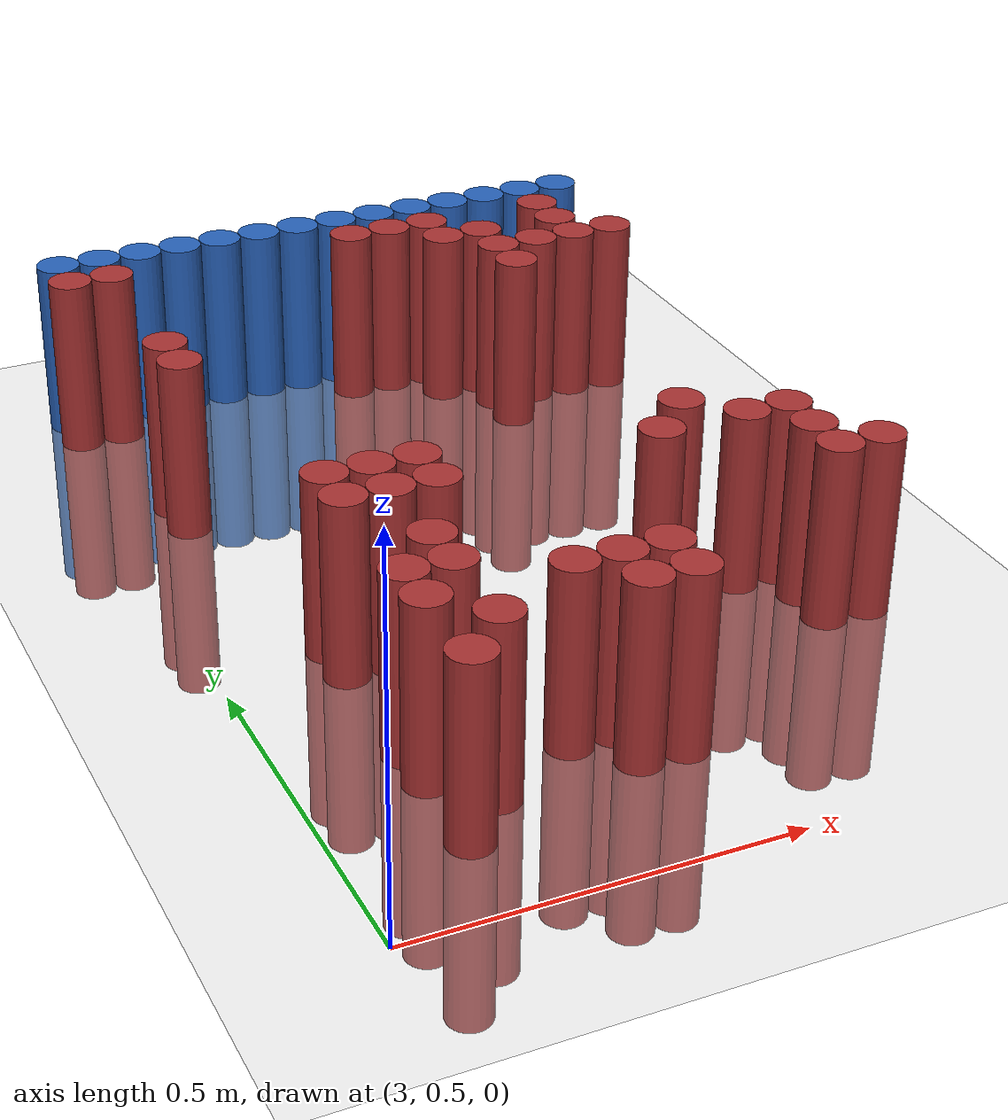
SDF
<sdf version="1.6">
 <world name="default">
  <model name="ground_plane">
   <static>1</static>
   <link name="link">
    <collision name="collision">
     <geometry><plane><normal>0 0 1</normal><size>100 100</size></plane></geometry>
     <surface><friction><ode><mu>100</mu><mu2>50</mu2></ode></friction></surface>
    </collision>
    <visual name="visual">
     <cast_shadows>0</cast_shadows>
     <geometry><plane><normal>0 0 1</normal><size>100 100</size></plane></geometry>
     <material>
      <script><uri>file://media/materials/scripts/gazebo.material</uri><name>Gazebo/Grey</name></script>
     </material>
    </visual>
   </link>
  </model>
  <model name="unit_cylinder_111">
   <static>1</static>
   <pose>3.030000 1.770000 0.000000 0.000000 0.000000 0.000000</pose>
   <link name="link">
    <inertial>
     <mass>1</mass>
     <inertia><ixx>0.145833</ixx><ixy>0</ixy><ixz>0</ixz><iyy>0.145833</iyy><iyz>0</iyz><izz>0.125</izz></inertia>
    </inertial>
    <collision name="collision">
     <geometry><cylinder><radius>0.030000</radius><length>0.5</length></cylinder></geometry>
    </collision>
    <visual name="visual">
     <geometry><cylinder><radius>0.030000</radius><length>0.5</length></cylinder></geometry>
     <material>
      <ambient>0.152000 0.379000 0.720000 1</ambient>
      <diffuse>0.152000 0.379000 0.720000 1</diffuse>
     </material>
     <material>
      <script><name>Gazebo/Grey</name><uri>file://media/materials/scripts/gazebo.material</uri></script>
     </material>
    </visual>
   </link>
  </model>
  <model name="unit_cylinder_112">
   <static>1</static>
   <pose>3.090000 1.770000 0.000000 0.000000 0.000000 0.000000</pose>
   <link name="link">
    <inertial>
     <mass>1</mass>
     <inertia><ixx>0.145833</ixx><ixy>0</ixy><ixz>0</ixz><iyy>0.145833</iyy><iyz>0</iyz><izz>0.125</izz></inertia>
    </inertial>
    <collision name="collision">
     <geometry><cylinder><radius>0.030000</radius><length>0.5</length></cylinder></geometry>
    </collision>
    <visual name="visual">
     <geometry><cylinder><radius>0.030000</radius><length>0.5</length></cylinder></geometry>
     <material>
      <ambient>0.152000 0.379000 0.720000 1</ambient>
      <diffuse>0.152000 0.379000 0.720000 1</diffuse>
     </material>
     <material>
      <script><name>Gazebo/Grey</name><uri>file://media/materials/scripts/gazebo.material</uri></script>
     </material>
    </visual>
   </link>
  </model>
  <model name="unit_cylinder_113">
   <static>1</static>
   <pose>3.150000 1.770000 0.000000 0.000000 0.000000 0.000000</pose>
   <link name="link">
    <inertial>
     <mass>1</mass>
     <inertia><ixx>0.145833</ixx><ixy>0</ixy><ixz>0</ixz><iyy>0.145833</iyy><iyz>0</iyz><izz>0.125</izz></inertia>
    </inertial>
    <collision name="collision">
     <geometry><cylinder><radius>0.030000</radius><length>0.5</length></cylinder></geometry>
    </collision>
    <visual name="visual">
     <geometry><cylinder><radius>0.030000</radius><length>0.5</length></cylinder></geometry>
     <material>
      <ambient>0.152000 0.379000 0.720000 1</ambient>
      <diffuse>0.152000 0.379000 0.720000 1</diffuse>
     </material>
     <material>
      <script><name>Gazebo/Grey</name><uri>file://media/materials/scripts/gazebo.material</uri></script>
     </material>
    </visual>
   </link>
  </model>
  <model name="unit_cylinder_114">
   <static>1</static>
   <pose>3.210000 1.770000 0.000000 0.000000 0.000000 0.000000</pose>
   <link name="link">
    <inertial>
     <mass>1</mass>
     <inertia><ixx>0.145833</ixx><ixy>0</ixy><ixz>0</ixz><iyy>0.145833</iyy><iyz>0</iyz><izz>0.125</izz></inertia>
    </inertial>
    <collision name="collision">
     <geometry><cylinder><radius>0.030000</radius><length>0.5</length></cylinder></geometry>
    </collision>
    <visual name="visual">
     <geometry><cylinder><radius>0.030000</radius><length>0.5</length></cylinder></geometry>
     <material>
      <ambient>0.152000 0.379000 0.720000 1</ambient>
      <diffuse>0.152000 0.379000 0.720000 1</diffuse>
     </material>
     <material>
      <script><name>Gazebo/Grey</name><uri>file://media/materials/scripts/gazebo.material</uri></script>
     </material>
    </visual>
   </link>
  </model>
  <model name="unit_cylinder_115">
   <static>1</static>
   <pose>3.270000 1.770000 0.000000 0.000000 0.000000 0.000000</pose>
   <link name="link">
    <inertial>
     <mass>1</mass>
     <inertia><ixx>0.145833</ixx><ixy>0</ixy><ixz>0</ixz><iyy>0.145833</iyy><iyz>0</iyz><izz>0.125</izz></inertia>
    </inertial>
    <collision name="collision">
     <geometry><cylinder><radius>0.030000</radius><length>0.5</length></cylinder></geometry>
    </collision>
    <visual name="visual">
     <geometry><cylinder><radius>0.030000</radius><length>0.5</length></cylinder></geometry>
     <material>
      <ambient>0.152000 0.379000 0.720000 1</ambient>
      <diffuse>0.152000 0.379000 0.720000 1</diffuse>
     </material>
     <material>
      <script><name>Gazebo/Grey</name><uri>file://media/materials/scripts/gazebo.material</uri></script>
     </material>
    </visual>
   </link>
  </model>
  <model name="unit_cylinder_116">
   <static>1</static>
   <pose>3.330000 1.770000 0.000000 0.000000 0.000000 0.000000</pose>
   <link name="link">
    <inertial>
     <mass>1</mass>
     <inertia><ixx>0.145833</ixx><ixy>0</ixy><ixz>0</ixz><iyy>0.145833</iyy><iyz>0</iyz><izz>0.125</izz></inertia>
    </inertial>
    <collision name="collision">
     <geometry><cylinder><radius>0.030000</radius><length>0.5</length></cylinder></geometry>
    </collision>
    <visual name="visual">
     <geometry><cylinder><radius>0.030000</radius><length>0.5</length></cylinder></geometry>
     <material>
      <ambient>0.152000 0.379000 0.720000 1</ambient>
      <diffuse>0.152000 0.379000 0.720000 1</diffuse>
     </material>
     <material>
      <script><name>Gazebo/Grey</name><uri>file://media/materials/scripts/gazebo.material</uri></script>
     </material>
    </visual>
   </link>
  </model>
  <model name="unit_cylinder_117">
   <static>1</static>
   <pose>3.390000 1.770000 0.000000 0.000000 0.000000 0.000000</pose>
   <link name="link">
    <inertial>
     <mass>1</mass>
     <inertia><ixx>0.145833</ixx><ixy>0</ixy><ixz>0</ixz><iyy>0.145833</iyy><iyz>0</iyz><izz>0.125</izz></inertia>
    </inertial>
    <collision name="collision">
     <geometry><cylinder><radius>0.030000</radius><length>0.5</length></cylinder></geometry>
    </collision>
    <visual name="visual">
     <geometry><cylinder><radius>0.030000</radius><length>0.5</length></cylinder></geometry>
     <material>
      <ambient>0.152000 0.379000 0.720000 1</ambient>
      <diffuse>0.152000 0.379000 0.720000 1</diffuse>
     </material>
     <material>
      <script><name>Gazebo/Grey</name><uri>file://media/materials/scripts/gazebo.material</uri></script>
     </material>
    </visual>
   </link>
  </model>
  <model name="unit_cylinder_118">
   <static>1</static>
   <pose>3.450000 1.770000 0.000000 0.000000 0.000000 0.000000</pose>
   <link name="link">
    <inertial>
     <mass>1</mass>
     <inertia><ixx>0.145833</ixx><ixy>0</ixy><ixz>0</ixz><iyy>0.145833</iyy><iyz>0</iyz><izz>0.125</izz></inertia>
    </inertial>
    <collision name="collision">
     <geometry><cylinder><radius>0.030000</radius><length>0.5</length></cylinder></geometry>
    </collision>
    <visual name="visual">
     <geometry><cylinder><radius>0.030000</radius><length>0.5</length></cylinder></geometry>
     <material>
      <ambient>0.152000 0.379000 0.720000 1</ambient>
      <diffuse>0.152000 0.379000 0.720000 1</diffuse>
     </material>
     <material>
      <script><name>Gazebo/Grey</name><uri>file://media/materials/scripts/gazebo.material</uri></script>
     </material>
    </visual>
   </link>
  </model>
  <model name="unit_cylinder_119">
   <static>1</static>
   <pose>3.510000 1.770000 0.000000 0.000000 0.000000 0.000000</pose>
   <link name="link">
    <inertial>
     <mass>1</mass>
     <inertia><ixx>0.145833</ixx><ixy>0</ixy><ixz>0</ixz><iyy>0.145833</iyy><iyz>0</iyz><izz>0.125</izz></inertia>
    </inertial>
    <collision name="collision">
     <geometry><cylinder><radius>0.030000</radius><length>0.5</length></cylinder></geometry>
    </collision>
    <visual name="visual">
     <geometry><cylinder><radius>0.030000</radius><length>0.5</length></cylinder></geometry>
     <material>
      <ambient>0.152000 0.379000 0.720000 1</ambient>
      <diffuse>0.152000 0.379000 0.720000 1</diffuse>
     </material>
     <material>
      <script><name>Gazebo/Grey</name><uri>file://media/materials/scripts/gazebo.material</uri></script>
     </material>
    </visual>
   </link>
  </model>
  <model name="unit_cylinder_120">
   <static>1</static>
   <pose>3.570000 1.770000 0.000000 0.000000 0.000000 0.000000</pose>
   <link name="link">
    <inertial>
     <mass>1</mass>
     <inertia><ixx>0.145833</ixx><ixy>0</ixy><ixz>0</ixz><iyy>0.145833</iyy><iyz>0</iyz><izz>0.125</izz></inertia>
    </inertial>
    <collision name="collision">
     <geometry><cylinder><radius>0.030000</radius><length>0.5</length></cylinder></geometry>
    </collision>
    <visual name="visual">
     <geometry><cylinder><radius>0.030000</radius><length>0.5</length></cylinder></geometry>
     <material>
      <ambient>0.152000 0.379000 0.720000 1</ambient>
      <diffuse>0.152000 0.379000 0.720000 1</diffuse>
     </material>
     <material>
      <script><name>Gazebo/Grey</name><uri>file://media/materials/scripts/gazebo.material</uri></script>
     </material>
    </visual>
   </link>
  </model>
  <model name="unit_cylinder_121">
   <static>1</static>
   <pose>3.630000 1.770000 0.000000 0.000000 0.000000 0.000000</pose>
   <link name="link">
    <inertial>
     <mass>1</mass>
     <inertia><ixx>0.145833</ixx><ixy>0</ixy><ixz>0</ixz><iyy>0.145833</iyy><iyz>0</iyz><izz>0.125</izz></inertia>
    </inertial>
    <collision name="collision">
     <geometry><cylinder><radius>0.030000</radius><length>0.5</length></cylinder></geometry>
    </collision>
    <visual name="visual">
     <geometry><cylinder><radius>0.030000</radius><length>0.5</length></cylinder></geometry>
     <material>
      <ambient>0.152000 0.379000 0.720000 1</ambient>
      <diffuse>0.152000 0.379000 0.720000 1</diffuse>
     </material>
     <material>
      <script><name>Gazebo/Grey</name><uri>file://media/materials/scripts/gazebo.material</uri></script>
     </material>
    </visual>
   </link>
  </model>
  <model name="unit_cylinder_122">
   <static>1</static>
   <pose>3.690000 1.770000 0.000000 0.000000 0.000000 0.000000</pose>
   <link name="link">
    <inertial>
     <mass>1</mass>
     <inertia><ixx>0.145833</ixx><ixy>0</ixy><ixz>0</ixz><iyy>0.145833</iyy><iyz>0</iyz><izz>0.125</izz></inertia>
    </inertial>
    <collision name="collision">
     <geometry><cylinder><radius>0.030000</radius><length>0.5</length></cylinder></geometry>
    </collision>
    <visual name="visual">
     <geometry><cylinder><radius>0.030000</radius><length>0.5</length></cylinder></geometry>
     <material>
      <ambient>0.152000 0.379000 0.720000 1</ambient>
      <diffuse>0.152000 0.379000 0.720000 1</diffuse>
     </material>
     <material>
      <script><name>Gazebo/Grey</name><uri>file://media/materials/scripts/gazebo.material</uri></script>
     </material>
    </visual>
   </link>
  </model>
  <model name="unit_cylinder_123">
   <static>1</static>
   <pose>3.750000 1.770000 0.000000 0.000000 0.000000 0.000000</pose>
   <link name="link">
    <inertial>
     <mass>1</mass>
     <inertia><ixx>0.145833</ixx><ixy>0</ixy><ixz>0</ixz><iyy>0.145833</iyy><iyz>0</iyz><izz>0.125</izz></inertia>
    </inertial>
    <collision name="collision">
     <geometry><cylinder><radius>0.030000</radius><length>0.5</length></cylinder></geometry>
    </collision>
    <visual name="visual">
     <geometry><cylinder><radius>0.030000</radius><length>0.5</length></cylinder></geometry>
     <material>
      <ambient>0.152000 0.379000 0.720000 1</ambient>
      <diffuse>0.152000 0.379000 0.720000 1</diffuse>
     </material>
     <material>
      <script><name>Gazebo/Grey</name><uri>file://media/materials/scripts/gazebo.material</uri></script>
     </material>
    </visual>
   </link>
  </model>
  <model name="unit_cylinder_124">
   <static>1</static>
   <pose>3.810000 1.770000 0.000000 0.000000 0.000000 0.000000</pose>
   <link name="link">
    <inertial>
     <mass>1</mass>
     <inertia><ixx>0.145833</ixx><ixy>0</ixy><ixz>0</ixz><iyy>0.145833</iyy><iyz>0</iyz><izz>0.125</izz></inertia>
    </inertial>
    <collision name="collision">
     <geometry><cylinder><radius>0.030000</radius><length>0.5</length></cylinder></geometry>
    </collision>
    <visual name="visual">
     <geometry><cylinder><radius>0.030000</radius><length>0.5</length></cylinder></geometry>
     <material>
      <ambient>0.152000 0.379000 0.720000 1</ambient>
      <diffuse>0.152000 0.379000 0.720000 1</diffuse>
     </material>
     <material>
      <script><name>Gazebo/Grey</name><uri>file://media/materials/scripts/gazebo.material</uri></script>
     </material>
    </visual>
   </link>
  </model>
  <model name="unit_cylinder_130">
   <static>1</static>
   <pose>3.030000 1.710000 0.000000 0.000000 0.000000 0.000000</pose>
   <link name="link">
    <inertial>
     <mass>1</mass>
     <inertia><ixx>0.145833</ixx><ixy>0</ixy><ixz>0</ixz><iyy>0.145833</iyy><iyz>0</iyz><izz>0.125</izz></inertia>
    </inertial>
    <collision name="collision">
     <geometry><cylinder><radius>0.030000</radius><length>0.5</length></cylinder></geometry>
    </collision>
    <visual name="visual">
     <geometry><cylinder><radius>0.030000</radius><length>0.5</length></cylinder></geometry>
     <material>
      <ambient>0.648000 0.192000 0.192000 1</ambient>
      <diffuse>0.648000 0.192000 0.192000 1</diffuse>
     </material>
     <material>
      <script><name>Gazebo/Grey</name><uri>file://media/materials/scripts/gazebo.material</uri></script>
     </material>
    </visual>
   </link>
  </model>
  <model name="unit_cylinder_131">
   <static>1</static>
   <pose>3.090000 1.710000 0.000000 0.000000 0.000000 0.000000</pose>
   <link name="link">
    <inertial>
     <mass>1</mass>
     <inertia><ixx>0.145833</ixx><ixy>0</ixy><ixz>0</ixz><iyy>0.145833</iyy><iyz>0</iyz><izz>0.125</izz></inertia>
    </inertial>
    <collision name="collision">
     <geometry><cylinder><radius>0.030000</radius><length>0.5</length></cylinder></geometry>
    </collision>
    <visual name="visual">
     <geometry><cylinder><radius>0.030000</radius><length>0.5</length></cylinder></geometry>
     <material>
      <ambient>0.648000 0.192000 0.192000 1</ambient>
      <diffuse>0.648000 0.192000 0.192000 1</diffuse>
     </material>
     <material>
      <script><name>Gazebo/Grey</name><uri>file://media/materials/scripts/gazebo.material</uri></script>
     </material>
    </visual>
   </link>
  </model>
  <model name="unit_cylinder_132">
   <static>1</static>
   <pose>3.450000 1.710000 0.000000 0.000000 0.000000 0.000000</pose>
   <link name="link">
    <inertial>
     <mass>1</mass>
     <inertia><ixx>0.145833</ixx><ixy>0</ixy><ixz>0</ixz><iyy>0.145833</iyy><iyz>0</iyz><izz>0.125</izz></inertia>
    </inertial>
    <collision name="collision">
     <geometry><cylinder><radius>0.030000</radius><length>0.5</length></cylinder></geometry>
    </collision>
    <visual name="visual">
     <geometry><cylinder><radius>0.030000</radius><length>0.5</length></cylinder></geometry>
     <material>
      <ambient>0.648000 0.192000 0.192000 1</ambient>
      <diffuse>0.648000 0.192000 0.192000 1</diffuse>
     </material>
     <material>
      <script><name>Gazebo/Grey</name><uri>file://media/materials/scripts/gazebo.material</uri></script>
     </material>
    </visual>
   </link>
  </model>
  <model name="unit_cylinder_133">
   <static>1</static>
   <pose>3.510000 1.710000 0.000000 0.000000 0.000000 0.000000</pose>
   <link name="link">
    <inertial>
     <mass>1</mass>
     <inertia><ixx>0.145833</ixx><ixy>0</ixy><ixz>0</ixz><iyy>0.145833</iyy><iyz>0</iyz><izz>0.125</izz></inertia>
    </inertial>
    <collision name="collision">
     <geometry><cylinder><radius>0.030000</radius><length>0.5</length></cylinder></geometry>
    </collision>
    <visual name="visual">
     <geometry><cylinder><radius>0.030000</radius><length>0.5</length></cylinder></geometry>
     <material>
      <ambient>0.648000 0.192000 0.192000 1</ambient>
      <diffuse>0.648000 0.192000 0.192000 1</diffuse>
     </material>
     <material>
      <script><name>Gazebo/Grey</name><uri>file://media/materials/scripts/gazebo.material</uri></script>
     </material>
    </visual>
   </link>
  </model>
  <model name="unit_cylinder_134">
   <static>1</static>
   <pose>3.570000 1.710000 0.000000 0.000000 0.000000 0.000000</pose>
   <link name="link">
    <inertial>
     <mass>1</mass>
     <inertia><ixx>0.145833</ixx><ixy>0</ixy><ixz>0</ixz><iyy>0.145833</iyy><iyz>0</iyz><izz>0.125</izz></inertia>
    </inertial>
    <collision name="collision">
     <geometry><cylinder><radius>0.030000</radius><length>0.5</length></cylinder></geometry>
    </collision>
    <visual name="visual">
     <geometry><cylinder><radius>0.030000</radius><length>0.5</length></cylinder></geometry>
     <material>
      <ambient>0.648000 0.192000 0.192000 1</ambient>
      <diffuse>0.648000 0.192000 0.192000 1</diffuse>
     </material>
     <material>
      <script><name>Gazebo/Grey</name><uri>file://media/materials/scripts/gazebo.material</uri></script>
     </material>
    </visual>
   </link>
  </model>
  <model name="unit_cylinder_135">
   <static>1</static>
   <pose>3.750000 1.710000 0.000000 0.000000 0.000000 0.000000</pose>
   <link name="link">
    <inertial>
     <mass>1</mass>
     <inertia><ixx>0.145833</ixx><ixy>0</ixy><ixz>0</ixz><iyy>0.145833</iyy><iyz>0</iyz><izz>0.125</izz></inertia>
    </inertial>
    <collision name="collision">
     <geometry><cylinder><radius>0.030000</radius><length>0.5</length></cylinder></geometry>
    </collision>
    <visual name="visual">
     <geometry><cylinder><radius>0.030000</radius><length>0.5</length></cylinder></geometry>
     <material>
      <ambient>0.648000 0.192000 0.192000 1</ambient>
      <diffuse>0.648000 0.192000 0.192000 1</diffuse>
     </material>
     <material>
      <script><name>Gazebo/Grey</name><uri>file://media/materials/scripts/gazebo.material</uri></script>
     </material>
    </visual>
   </link>
  </model>
  <model name="unit_cylinder_146">
   <static>1</static>
   <pose>3.570000 1.650000 0.000000 0.000000 0.000000 0.000000</pose>
   <link name="link">
    <inertial>
     <mass>1</mass>
     <inertia><ixx>0.145833</ixx><ixy>0</ixy><ixz>0</ixz><iyy>0.145833</iyy><iyz>0</iyz><izz>0.125</izz></inertia>
    </inertial>
    <collision name="collision">
     <geometry><cylinder><radius>0.030000</radius><length>0.5</length></cylinder></geometry>
    </collision>
    <visual name="visual">
     <geometry><cylinder><radius>0.030000</radius><length>0.5</length></cylinder></geometry>
     <material>
      <ambient>0.648000 0.192000 0.192000 1</ambient>
      <diffuse>0.648000 0.192000 0.192000 1</diffuse>
     </material>
     <material>
      <script><name>Gazebo/Grey</name><uri>file://media/materials/scripts/gazebo.material</uri></script>
     </material>
    </visual>
   </link>
  </model>
  <model name="unit_cylinder_147">
   <static>1</static>
   <pose>3.630000 1.650000 0.000000 0.000000 0.000000 0.000000</pose>
   <link name="link">
    <inertial>
     <mass>1</mass>
     <inertia><ixx>0.145833</ixx><ixy>0</ixy><ixz>0</ixz><iyy>0.145833</iyy><iyz>0</iyz><izz>0.125</izz></inertia>
    </inertial>
    <collision name="collision">
     <geometry><cylinder><radius>0.030000</radius><length>0.5</length></cylinder></geometry>
    </collision>
    <visual name="visual">
     <geometry><cylinder><radius>0.030000</radius><length>0.5</length></cylinder></geometry>
     <material>
      <ambient>0.648000 0.192000 0.192000 1</ambient>
      <diffuse>0.648000 0.192000 0.192000 1</diffuse>
     </material>
     <material>
      <script><name>Gazebo/Grey</name><uri>file://media/materials/scripts/gazebo.material</uri></script>
     </material>
    </visual>
   </link>
  </model>
  <model name="unit_cylinder_148">
   <static>1</static>
   <pose>3.750000 1.650000 0.000000 0.000000 0.000000 0.000000</pose>
   <link name="link">
    <inertial>
     <mass>1</mass>
     <inertia><ixx>0.145833</ixx><ixy>0</ixy><ixz>0</ixz><iyy>0.145833</iyy><iyz>0</iyz><izz>0.125</izz></inertia>
    </inertial>
    <collision name="collision">
     <geometry><cylinder><radius>0.030000</radius><length>0.5</length></cylinder></geometry>
    </collision>
    <visual name="visual">
     <geometry><cylinder><radius>0.030000</radius><length>0.5</length></cylinder></geometry>
     <material>
      <ambient>0.648000 0.192000 0.192000 1</ambient>
      <diffuse>0.648000 0.192000 0.192000 1</diffuse>
     </material>
     <material>
      <script><name>Gazebo/Grey</name><uri>file://media/materials/scripts/gazebo.material</uri></script>
     </material>
    </visual>
   </link>
  </model>
  <model name="unit_cylinder_152">
   <static>1</static>
   <pose>3.630000 1.590000 0.000000 0.000000 0.000000 0.000000</pose>
   <link name="link">
    <inertial>
     <mass>1</mass>
     <inertia><ixx>0.145833</ixx><ixy>0</ixy><ixz>0</ixz><iyy>0.145833</iyy><iyz>0</iyz><izz>0.125</izz></inertia>
    </inertial>
    <collision name="collision">
     <geometry><cylinder><radius>0.030000</radius><length>0.5</length></cylinder></geometry>
    </collision>
    <visual name="visual">
     <geometry><cylinder><radius>0.030000</radius><length>0.5</length></cylinder></geometry>
     <material>
      <ambient>0.648000 0.192000 0.192000 1</ambient>
      <diffuse>0.648000 0.192000 0.192000 1</diffuse>
     </material>
     <material>
      <script><name>Gazebo/Grey</name><uri>file://media/materials/scripts/gazebo.material</uri></script>
     </material>
    </visual>
   </link>
  </model>
  <model name="unit_cylinder_153">
   <static>1</static>
   <pose>3.690000 1.590000 0.000000 0.000000 0.000000 0.000000</pose>
   <link name="link">
    <inertial>
     <mass>1</mass>
     <inertia><ixx>0.145833</ixx><ixy>0</ixy><ixz>0</ixz><iyy>0.145833</iyy><iyz>0</iyz><izz>0.125</izz></inertia>
    </inertial>
    <collision name="collision">
     <geometry><cylinder><radius>0.030000</radius><length>0.5</length></cylinder></geometry>
    </collision>
    <visual name="visual">
     <geometry><cylinder><radius>0.030000</radius><length>0.5</length></cylinder></geometry>
     <material>
      <ambient>0.648000 0.192000 0.192000 1</ambient>
      <diffuse>0.648000 0.192000 0.192000 1</diffuse>
     </material>
     <material>
      <script><name>Gazebo/Grey</name><uri>file://media/materials/scripts/gazebo.material</uri></script>
     </material>
    </visual>
   </link>
  </model>
  <model name="unit_cylinder_154">
   <static>1</static>
   <pose>3.750000 1.590000 0.000000 0.000000 0.000000 0.000000</pose>
   <link name="link">
    <inertial>
     <mass>1</mass>
     <inertia><ixx>0.145833</ixx><ixy>0</ixy><ixz>0</ixz><iyy>0.145833</iyy><iyz>0</iyz><izz>0.125</izz></inertia>
    </inertial>
    <collision name="collision">
     <geometry><cylinder><radius>0.030000</radius><length>0.5</length></cylinder></geometry>
    </collision>
    <visual name="visual">
     <geometry><cylinder><radius>0.030000</radius><length>0.5</length></cylinder></geometry>
     <material>
      <ambient>0.648000 0.192000 0.192000 1</ambient>
      <diffuse>0.648000 0.192000 0.192000 1</diffuse>
     </material>
     <material>
      <script><name>Gazebo/Grey</name><uri>file://media/materials/scripts/gazebo.material</uri></script>
     </material>
    </visual>
   </link>
  </model>
  <model name="unit_cylinder_155">
   <static>1</static>
   <pose>3.810000 1.590000 0.000000 0.000000 0.000000 0.000000</pose>
   <link name="link">
    <inertial>
     <mass>1</mass>
     <inertia><ixx>0.145833</ixx><ixy>0</ixy><ixz>0</ixz><iyy>0.145833</iyy><iyz>0</iyz><izz>0.125</izz></inertia>
    </inertial>
    <collision name="collision">
     <geometry><cylinder><radius>0.030000</radius><length>0.5</length></cylinder></geometry>
    </collision>
    <visual name="visual">
     <geometry><cylinder><radius>0.030000</radius><length>0.5</length></cylinder></geometry>
     <material>
      <ambient>0.648000 0.192000 0.192000 1</ambient>
      <diffuse>0.648000 0.192000 0.192000 1</diffuse>
     </material>
     <material>
      <script><name>Gazebo/Grey</name><uri>file://media/materials/scripts/gazebo.material</uri></script>
     </material>
    </visual>
   </link>
  </model>
  <model name="unit_cylinder_156">
   <static>1</static>
   <pose>3.630000 1.530000 0.000000 0.000000 0.000000 0.000000</pose>
   <link name="link">
    <inertial>
     <mass>1</mass>
     <inertia><ixx>0.145833</ixx><ixy>0</ixy><ixz>0</ixz><iyy>0.145833</iyy><iyz>0</iyz><izz>0.125</izz></inertia>
    </inertial>
    <collision name="collision">
     <geometry><cylinder><radius>0.030000</radius><length>0.5</length></cylinder></geometry>
    </collision>
    <visual name="visual">
     <geometry><cylinder><radius>0.030000</radius><length>0.5</length></cylinder></geometry>
     <material>
      <ambient>0.648000 0.192000 0.192000 1</ambient>
      <diffuse>0.648000 0.192000 0.192000 1</diffuse>
     </material>
     <material>
      <script><name>Gazebo/Grey</name><uri>file://media/materials/scripts/gazebo.material</uri></script>
     </material>
    </visual>
   </link>
  </model>
  <model name="unit_cylinder_157">
   <static>1</static>
   <pose>3.090000 1.470000 0.000000 0.000000 0.000000 0.000000</pose>
   <link name="link">
    <inertial>
     <mass>1</mass>
     <inertia><ixx>0.145833</ixx><ixy>0</ixy><ixz>0</ixz><iyy>0.145833</iyy><iyz>0</iyz><izz>0.125</izz></inertia>
    </inertial>
    <collision name="collision">
     <geometry><cylinder><radius>0.030000</radius><length>0.5</length></cylinder></geometry>
    </collision>
    <visual name="visual">
     <geometry><cylinder><radius>0.030000</radius><length>0.5</length></cylinder></geometry>
     <material>
      <ambient>0.648000 0.192000 0.192000 1</ambient>
      <diffuse>0.648000 0.192000 0.192000 1</diffuse>
     </material>
     <material>
      <script><name>Gazebo/Grey</name><uri>file://media/materials/scripts/gazebo.material</uri></script>
     </material>
    </visual>
   </link>
  </model>
  <model name="unit_cylinder_159">
   <static>1</static>
   <pose>3.090000 1.410000 0.000000 0.000000 0.000000 0.000000</pose>
   <link name="link">
    <inertial>
     <mass>1</mass>
     <inertia><ixx>0.145833</ixx><ixy>0</ixy><ixz>0</ixz><iyy>0.145833</iyy><iyz>0</iyz><izz>0.125</izz></inertia>
    </inertial>
    <collision name="collision">
     <geometry><cylinder><radius>0.030000</radius><length>0.5</length></cylinder></geometry>
    </collision>
    <visual name="visual">
     <geometry><cylinder><radius>0.030000</radius><length>0.5</length></cylinder></geometry>
     <material>
      <ambient>0.648000 0.192000 0.192000 1</ambient>
      <diffuse>0.648000 0.192000 0.192000 1</diffuse>
     </material>
     <material>
      <script><name>Gazebo/Grey</name><uri>file://media/materials/scripts/gazebo.material</uri></script>
     </material>
    </visual>
   </link>
  </model>
  <model name="unit_cylinder_169">
   <static>1</static>
   <pose>3.150000 1.050000 0.000000 0.000000 0.000000 0.000000</pose>
   <link name="link">
    <inertial>
     <mass>1</mass>
     <inertia><ixx>0.145833</ixx><ixy>0</ixy><ixz>0</ixz><iyy>0.145833</iyy><iyz>0</iyz><izz>0.125</izz></inertia>
    </inertial>
    <collision name="collision">
     <geometry><cylinder><radius>0.030000</radius><length>0.5</length></cylinder></geometry>
    </collision>
    <visual name="visual">
     <geometry><cylinder><radius>0.030000</radius><length>0.5</length></cylinder></geometry>
     <material>
      <ambient>0.648000 0.192000 0.192000 1</ambient>
      <diffuse>0.648000 0.192000 0.192000 1</diffuse>
     </material>
     <material>
      <script><name>Gazebo/Grey</name><uri>file://media/materials/scripts/gazebo.material</uri></script>
     </material>
    </visual>
   </link>
  </model>
  <model name="unit_cylinder_170">
   <static>1</static>
   <pose>3.210000 1.050000 0.000000 0.000000 0.000000 0.000000</pose>
   <link name="link">
    <inertial>
     <mass>1</mass>
     <inertia><ixx>0.145833</ixx><ixy>0</ixy><ixz>0</ixz><iyy>0.145833</iyy><iyz>0</iyz><izz>0.125</izz></inertia>
    </inertial>
    <collision name="collision">
     <geometry><cylinder><radius>0.030000</radius><length>0.5</length></cylinder></geometry>
    </collision>
    <visual name="visual">
     <geometry><cylinder><radius>0.030000</radius><length>0.5</length></cylinder></geometry>
     <material>
      <ambient>0.648000 0.192000 0.192000 1</ambient>
      <diffuse>0.648000 0.192000 0.192000 1</diffuse>
     </material>
     <material>
      <script><name>Gazebo/Grey</name><uri>file://media/materials/scripts/gazebo.material</uri></script>
     </material>
    </visual>
   </link>
  </model>
  <model name="unit_cylinder_171">
   <static>1</static>
   <pose>3.270000 1.050000 0.000000 0.000000 0.000000 0.000000</pose>
   <link name="link">
    <inertial>
     <mass>1</mass>
     <inertia><ixx>0.145833</ixx><ixy>0</ixy><ixz>0</ixz><iyy>0.145833</iyy><iyz>0</iyz><izz>0.125</izz></inertia>
    </inertial>
    <collision name="collision">
     <geometry><cylinder><radius>0.030000</radius><length>0.5</length></cylinder></geometry>
    </collision>
    <visual name="visual">
     <geometry><cylinder><radius>0.030000</radius><length>0.5</length></cylinder></geometry>
     <material>
      <ambient>0.648000 0.192000 0.192000 1</ambient>
      <diffuse>0.648000 0.192000 0.192000 1</diffuse>
     </material>
     <material>
      <script><name>Gazebo/Grey</name><uri>file://media/materials/scripts/gazebo.material</uri></script>
     </material>
    </visual>
   </link>
  </model>
  <model name="unit_cylinder_172">
   <static>1</static>
   <pose>3.630000 1.050000 0.000000 0.000000 0.000000 0.000000</pose>
   <link name="link">
    <inertial>
     <mass>1</mass>
     <inertia><ixx>0.145833</ixx><ixy>0</ixy><ixz>0</ixz><iyy>0.145833</iyy><iyz>0</iyz><izz>0.125</izz></inertia>
    </inertial>
    <collision name="collision">
     <geometry><cylinder><radius>0.030000</radius><length>0.5</length></cylinder></geometry>
    </collision>
    <visual name="visual">
     <geometry><cylinder><radius>0.030000</radius><length>0.5</length></cylinder></geometry>
     <material>
      <ambient>0.648000 0.192000 0.192000 1</ambient>
      <diffuse>0.648000 0.192000 0.192000 1</diffuse>
     </material>
     <material>
      <script><name>Gazebo/Grey</name><uri>file://media/materials/scripts/gazebo.material</uri></script>
     </material>
    </visual>
   </link>
  </model>
  <model name="unit_cylinder_177">
   <static>1</static>
   <pose>3.150000 0.990000 0.000000 0.000000 0.000000 0.000000</pose>
   <link name="link">
    <inertial>
     <mass>1</mass>
     <inertia><ixx>0.145833</ixx><ixy>0</ixy><ixz>0</ixz><iyy>0.145833</iyy><iyz>0</iyz><izz>0.125</izz></inertia>
    </inertial>
    <collision name="collision">
     <geometry><cylinder><radius>0.030000</radius><length>0.5</length></cylinder></geometry>
    </collision>
    <visual name="visual">
     <geometry><cylinder><radius>0.030000</radius><length>0.5</length></cylinder></geometry>
     <material>
      <ambient>0.648000 0.192000 0.192000 1</ambient>
      <diffuse>0.648000 0.192000 0.192000 1</diffuse>
     </material>
     <material>
      <script><name>Gazebo/Grey</name><uri>file://media/materials/scripts/gazebo.material</uri></script>
     </material>
    </visual>
   </link>
  </model>
  <model name="unit_cylinder_178">
   <static>1</static>
   <pose>3.210000 0.990000 0.000000 0.000000 0.000000 0.000000</pose>
   <link name="link">
    <inertial>
     <mass>1</mass>
     <inertia><ixx>0.145833</ixx><ixy>0</ixy><ixz>0</ixz><iyy>0.145833</iyy><iyz>0</iyz><izz>0.125</izz></inertia>
    </inertial>
    <collision name="collision">
     <geometry><cylinder><radius>0.030000</radius><length>0.5</length></cylinder></geometry>
    </collision>
    <visual name="visual">
     <geometry><cylinder><radius>0.030000</radius><length>0.5</length></cylinder></geometry>
     <material>
      <ambient>0.648000 0.192000 0.192000 1</ambient>
      <diffuse>0.648000 0.192000 0.192000 1</diffuse>
     </material>
     <material>
      <script><name>Gazebo/Grey</name><uri>file://media/materials/scripts/gazebo.material</uri></script>
     </material>
    </visual>
   </link>
  </model>
  <model name="unit_cylinder_179">
   <static>1</static>
   <pose>3.270000 0.990000 0.000000 0.000000 0.000000 0.000000</pose>
   <link name="link">
    <inertial>
     <mass>1</mass>
     <inertia><ixx>0.145833</ixx><ixy>0</ixy><ixz>0</ixz><iyy>0.145833</iyy><iyz>0</iyz><izz>0.125</izz></inertia>
    </inertial>
    <collision name="collision">
     <geometry><cylinder><radius>0.030000</radius><length>0.5</length></cylinder></geometry>
    </collision>
    <visual name="visual">
     <geometry><cylinder><radius>0.030000</radius><length>0.5</length></cylinder></geometry>
     <material>
      <ambient>0.648000 0.192000 0.192000 1</ambient>
      <diffuse>0.648000 0.192000 0.192000 1</diffuse>
     </material>
     <material>
      <script><name>Gazebo/Grey</name><uri>file://media/materials/scripts/gazebo.material</uri></script>
     </material>
    </visual>
   </link>
  </model>
  <model name="unit_cylinder_180">
   <static>1</static>
   <pose>3.570000 0.990000 0.000000 0.000000 0.000000 0.000000</pose>
   <link name="link">
    <inertial>
     <mass>1</mass>
     <inertia><ixx>0.145833</ixx><ixy>0</ixy><ixz>0</ixz><iyy>0.145833</iyy><iyz>0</iyz><izz>0.125</izz></inertia>
    </inertial>
    <collision name="collision">
     <geometry><cylinder><radius>0.030000</radius><length>0.5</length></cylinder></geometry>
    </collision>
    <visual name="visual">
     <geometry><cylinder><radius>0.030000</radius><length>0.5</length></cylinder></geometry>
     <material>
      <ambient>0.648000 0.192000 0.192000 1</ambient>
      <diffuse>0.648000 0.192000 0.192000 1</diffuse>
     </material>
     <material>
      <script><name>Gazebo/Grey</name><uri>file://media/materials/scripts/gazebo.material</uri></script>
     </material>
    </visual>
   </link>
  </model>
  <model name="unit_cylinder_181">
   <static>1</static>
   <pose>3.690000 0.990000 0.000000 0.000000 0.000000 0.000000</pose>
   <link name="link">
    <inertial>
     <mass>1</mass>
     <inertia><ixx>0.145833</ixx><ixy>0</ixy><ixz>0</ixz><iyy>0.145833</iyy><iyz>0</iyz><izz>0.125</izz></inertia>
    </inertial>
    <collision name="collision">
     <geometry><cylinder><radius>0.030000</radius><length>0.5</length></cylinder></geometry>
    </collision>
    <visual name="visual">
     <geometry><cylinder><radius>0.030000</radius><length>0.5</length></cylinder></geometry>
     <material>
      <ambient>0.648000 0.192000 0.192000 1</ambient>
      <diffuse>0.648000 0.192000 0.192000 1</diffuse>
     </material>
     <material>
      <script><name>Gazebo/Grey</name><uri>file://media/materials/scripts/gazebo.material</uri></script>
     </material>
    </visual>
   </link>
  </model>
  <model name="unit_cylinder_182">
   <static>1</static>
   <pose>3.750000 0.990000 0.000000 0.000000 0.000000 0.000000</pose>
   <link name="link">
    <inertial>
     <mass>1</mass>
     <inertia><ixx>0.145833</ixx><ixy>0</ixy><ixz>0</ixz><iyy>0.145833</iyy><iyz>0</iyz><izz>0.125</izz></inertia>
    </inertial>
    <collision name="collision">
     <geometry><cylinder><radius>0.030000</radius><length>0.5</length></cylinder></geometry>
    </collision>
    <visual name="visual">
     <geometry><cylinder><radius>0.030000</radius><length>0.5</length></cylinder></geometry>
     <material>
      <ambient>0.648000 0.192000 0.192000 1</ambient>
      <diffuse>0.648000 0.192000 0.192000 1</diffuse>
     </material>
     <material>
      <script><name>Gazebo/Grey</name><uri>file://media/materials/scripts/gazebo.material</uri></script>
     </material>
    </visual>
   </link>
  </model>
  <model name="unit_cylinder_187">
   <static>1</static>
   <pose>3.750000 0.930000 0.000000 0.000000 0.000000 0.000000</pose>
   <link name="link">
    <inertial>
     <mass>1</mass>
     <inertia><ixx>0.145833</ixx><ixy>0</ixy><ixz>0</ixz><iyy>0.145833</iyy><iyz>0</iyz><izz>0.125</izz></inertia>
    </inertial>
    <collision name="collision">
     <geometry><cylinder><radius>0.030000</radius><length>0.5</length></cylinder></geometry>
    </collision>
    <visual name="visual">
     <geometry><cylinder><radius>0.030000</radius><length>0.5</length></cylinder></geometry>
     <material>
      <ambient>0.648000 0.192000 0.192000 1</ambient>
      <diffuse>0.648000 0.192000 0.192000 1</diffuse>
     </material>
     <material>
      <script><name>Gazebo/Grey</name><uri>file://media/materials/scripts/gazebo.material</uri></script>
     </material>
    </visual>
   </link>
  </model>
  <model name="unit_cylinder_189">
   <static>1</static>
   <pose>3.210000 0.870000 0.000000 0.000000 0.000000 0.000000</pose>
   <link name="link">
    <inertial>
     <mass>1</mass>
     <inertia><ixx>0.145833</ixx><ixy>0</ixy><ixz>0</ixz><iyy>0.145833</iyy><iyz>0</iyz><izz>0.125</izz></inertia>
    </inertial>
    <collision name="collision">
     <geometry><cylinder><radius>0.030000</radius><length>0.5</length></cylinder></geometry>
    </collision>
    <visual name="visual">
     <geometry><cylinder><radius>0.030000</radius><length>0.5</length></cylinder></geometry>
     <material>
      <ambient>0.648000 0.192000 0.192000 1</ambient>
      <diffuse>0.648000 0.192000 0.192000 1</diffuse>
     </material>
     <material>
      <script><name>Gazebo/Grey</name><uri>file://media/materials/scripts/gazebo.material</uri></script>
     </material>
    </visual>
   </link>
  </model>
  <model name="unit_cylinder_190">
   <static>1</static>
   <pose>3.750000 0.870000 0.000000 0.000000 0.000000 0.000000</pose>
   <link name="link">
    <inertial>
     <mass>1</mass>
     <inertia><ixx>0.145833</ixx><ixy>0</ixy><ixz>0</ixz><iyy>0.145833</iyy><iyz>0</iyz><izz>0.125</izz></inertia>
    </inertial>
    <collision name="collision">
     <geometry><cylinder><radius>0.030000</radius><length>0.5</length></cylinder></geometry>
    </collision>
    <visual name="visual">
     <geometry><cylinder><radius>0.030000</radius><length>0.5</length></cylinder></geometry>
     <material>
      <ambient>0.648000 0.192000 0.192000 1</ambient>
      <diffuse>0.648000 0.192000 0.192000 1</diffuse>
     </material>
     <material>
      <script><name>Gazebo/Grey</name><uri>file://media/materials/scripts/gazebo.material</uri></script>
     </material>
    </visual>
   </link>
  </model>
  <model name="unit_cylinder_191">
   <static>1</static>
   <pose>3.810000 0.870000 0.000000 0.000000 0.000000 0.000000</pose>
   <link name="link">
    <inertial>
     <mass>1</mass>
     <inertia><ixx>0.145833</ixx><ixy>0</ixy><ixz>0</ixz><iyy>0.145833</iyy><iyz>0</iyz><izz>0.125</izz></inertia>
    </inertial>
    <collision name="collision">
     <geometry><cylinder><radius>0.030000</radius><length>0.5</length></cylinder></geometry>
    </collision>
    <visual name="visual">
     <geometry><cylinder><radius>0.030000</radius><length>0.5</length></cylinder></geometry>
     <material>
      <ambient>0.648000 0.192000 0.192000 1</ambient>
      <diffuse>0.648000 0.192000 0.192000 1</diffuse>
     </material>
     <material>
      <script><name>Gazebo/Grey</name><uri>file://media/materials/scripts/gazebo.material</uri></script>
     </material>
    </visual>
   </link>
  </model>
  <model name="unit_cylinder_192">
   <static>1</static>
   <pose>3.150000 0.810000 0.000000 0.000000 0.000000 0.000000</pose>
   <link name="link">
    <inertial>
     <mass>1</mass>
     <inertia><ixx>0.145833</ixx><ixy>0</ixy><ixz>0</ixz><iyy>0.145833</iyy><iyz>0</iyz><izz>0.125</izz></inertia>
    </inertial>
    <collision name="collision">
     <geometry><cylinder><radius>0.030000</radius><length>0.5</length></cylinder></geometry>
    </collision>
    <visual name="visual">
     <geometry><cylinder><radius>0.030000</radius><length>0.5</length></cylinder></geometry>
     <material>
      <ambient>0.648000 0.192000 0.192000 1</ambient>
      <diffuse>0.648000 0.192000 0.192000 1</diffuse>
     </material>
     <material>
      <script><name>Gazebo/Grey</name><uri>file://media/materials/scripts/gazebo.material</uri></script>
     </material>
    </visual>
   </link>
  </model>
  <model name="unit_cylinder_193">
   <static>1</static>
   <pose>3.210000 0.810000 0.000000 0.000000 0.000000 0.000000</pose>
   <link name="link">
    <inertial>
     <mass>1</mass>
     <inertia><ixx>0.145833</ixx><ixy>0</ixy><ixz>0</ixz><iyy>0.145833</iyy><iyz>0</iyz><izz>0.125</izz></inertia>
    </inertial>
    <collision name="collision">
     <geometry><cylinder><radius>0.030000</radius><length>0.5</length></cylinder></geometry>
    </collision>
    <visual name="visual">
     <geometry><cylinder><radius>0.030000</radius><length>0.5</length></cylinder></geometry>
     <material>
      <ambient>0.648000 0.192000 0.192000 1</ambient>
      <diffuse>0.648000 0.192000 0.192000 1</diffuse>
     </material>
     <material>
      <script><name>Gazebo/Grey</name><uri>file://media/materials/scripts/gazebo.material</uri></script>
     </material>
    </visual>
   </link>
  </model>
  <model name="unit_cylinder_196">
   <static>1</static>
   <pose>3.150000 0.750000 0.000000 0.000000 0.000000 0.000000</pose>
   <link name="link">
    <inertial>
     <mass>1</mass>
     <inertia><ixx>0.145833</ixx><ixy>0</ixy><ixz>0</ixz><iyy>0.145833</iyy><iyz>0</iyz><izz>0.125</izz></inertia>
    </inertial>
    <collision name="collision">
     <geometry><cylinder><radius>0.030000</radius><length>0.5</length></cylinder></geometry>
    </collision>
    <visual name="visual">
     <geometry><cylinder><radius>0.030000</radius><length>0.5</length></cylinder></geometry>
     <material>
      <ambient>0.648000 0.192000 0.192000 1</ambient>
      <diffuse>0.648000 0.192000 0.192000 1</diffuse>
     </material>
     <material>
      <script><name>Gazebo/Grey</name><uri>file://media/materials/scripts/gazebo.material</uri></script>
     </material>
    </visual>
   </link>
  </model>
  <model name="unit_cylinder_197">
   <static>1</static>
   <pose>3.330000 0.750000 0.000000 0.000000 0.000000 0.000000</pose>
   <link name="link">
    <inertial>
     <mass>1</mass>
     <inertia><ixx>0.145833</ixx><ixy>0</ixy><ixz>0</ixz><iyy>0.145833</iyy><iyz>0</iyz><izz>0.125</izz></inertia>
    </inertial>
    <collision name="collision">
     <geometry><cylinder><radius>0.030000</radius><length>0.5</length></cylinder></geometry>
    </collision>
    <visual name="visual">
     <geometry><cylinder><radius>0.030000</radius><length>0.5</length></cylinder></geometry>
     <material>
      <ambient>0.648000 0.192000 0.192000 1</ambient>
      <diffuse>0.648000 0.192000 0.192000 1</diffuse>
     </material>
     <material>
      <script><name>Gazebo/Grey</name><uri>file://media/materials/scripts/gazebo.material</uri></script>
     </material>
    </visual>
   </link>
  </model>
  <model name="unit_cylinder_198">
   <static>1</static>
   <pose>3.390000 0.750000 0.000000 0.000000 0.000000 0.000000</pose>
   <link name="link">
    <inertial>
     <mass>1</mass>
     <inertia><ixx>0.145833</ixx><ixy>0</ixy><ixz>0</ixz><iyy>0.145833</iyy><iyz>0</iyz><izz>0.125</izz></inertia>
    </inertial>
    <collision name="collision">
     <geometry><cylinder><radius>0.030000</radius><length>0.5</length></cylinder></geometry>
    </collision>
    <visual name="visual">
     <geometry><cylinder><radius>0.030000</radius><length>0.5</length></cylinder></geometry>
     <material>
      <ambient>0.648000 0.192000 0.192000 1</ambient>
      <diffuse>0.648000 0.192000 0.192000 1</diffuse>
     </material>
     <material>
      <script><name>Gazebo/Grey</name><uri>file://media/materials/scripts/gazebo.material</uri></script>
     </material>
    </visual>
   </link>
  </model>
  <model name="unit_cylinder_199">
   <static>1</static>
   <pose>3.450000 0.750000 0.000000 0.000000 0.000000 0.000000</pose>
   <link name="link">
    <inertial>
     <mass>1</mass>
     <inertia><ixx>0.145833</ixx><ixy>0</ixy><ixz>0</ixz><iyy>0.145833</iyy><iyz>0</iyz><izz>0.125</izz></inertia>
    </inertial>
    <collision name="collision">
     <geometry><cylinder><radius>0.030000</radius><length>0.5</length></cylinder></geometry>
    </collision>
    <visual name="visual">
     <geometry><cylinder><radius>0.030000</radius><length>0.5</length></cylinder></geometry>
     <material>
      <ambient>0.648000 0.192000 0.192000 1</ambient>
      <diffuse>0.648000 0.192000 0.192000 1</diffuse>
     </material>
     <material>
      <script><name>Gazebo/Grey</name><uri>file://media/materials/scripts/gazebo.material</uri></script>
     </material>
    </visual>
   </link>
  </model>
  <model name="unit_cylinder_202">
   <static>1</static>
   <pose>3.210000 0.690000 0.000000 0.000000 0.000000 0.000000</pose>
   <link name="link">
    <inertial>
     <mass>1</mass>
     <inertia><ixx>0.145833</ixx><ixy>0</ixy><ixz>0</ixz><iyy>0.145833</iyy><iyz>0</iyz><izz>0.125</izz></inertia>
    </inertial>
    <collision name="collision">
     <geometry><cylinder><radius>0.030000</radius><length>0.5</length></cylinder></geometry>
    </collision>
    <visual name="visual">
     <geometry><cylinder><radius>0.030000</radius><length>0.5</length></cylinder></geometry>
     <material>
      <ambient>0.648000 0.192000 0.192000 1</ambient>
      <diffuse>0.648000 0.192000 0.192000 1</diffuse>
     </material>
     <material>
      <script><name>Gazebo/Grey</name><uri>file://media/materials/scripts/gazebo.material</uri></script>
     </material>
    </visual>
   </link>
  </model>
  <model name="unit_cylinder_203">
   <static>1</static>
   <pose>3.390000 0.690000 0.000000 0.000000 0.000000 0.000000</pose>
   <link name="link">
    <inertial>
     <mass>1</mass>
     <inertia><ixx>0.145833</ixx><ixy>0</ixy><ixz>0</ixz><iyy>0.145833</iyy><iyz>0</iyz><izz>0.125</izz></inertia>
    </inertial>
    <collision name="collision">
     <geometry><cylinder><radius>0.030000</radius><length>0.5</length></cylinder></geometry>
    </collision>
    <visual name="visual">
     <geometry><cylinder><radius>0.030000</radius><length>0.5</length></cylinder></geometry>
     <material>
      <ambient>0.648000 0.192000 0.192000 1</ambient>
      <diffuse>0.648000 0.192000 0.192000 1</diffuse>
     </material>
     <material>
      <script><name>Gazebo/Grey</name><uri>file://media/materials/scripts/gazebo.material</uri></script>
     </material>
    </visual>
   </link>
  </model>
  <model name="unit_cylinder_204">
   <static>1</static>
   <pose>3.450000 0.690000 0.000000 0.000000 0.000000 0.000000</pose>
   <link name="link">
    <inertial>
     <mass>1</mass>
     <inertia><ixx>0.145833</ixx><ixy>0</ixy><ixz>0</ixz><iyy>0.145833</iyy><iyz>0</iyz><izz>0.125</izz></inertia>
    </inertial>
    <collision name="collision">
     <geometry><cylinder><radius>0.030000</radius><length>0.5</length></cylinder></geometry>
    </collision>
    <visual name="visual">
     <geometry><cylinder><radius>0.030000</radius><length>0.5</length></cylinder></geometry>
     <material>
      <ambient>0.648000 0.192000 0.192000 1</ambient>
      <diffuse>0.648000 0.192000 0.192000 1</diffuse>
     </material>
     <material>
      <script><name>Gazebo/Grey</name><uri>file://media/materials/scripts/gazebo.material</uri></script>
     </material>
    </visual>
   </link>
  </model>
  <model name="unit_cylinder_208">
   <static>1</static>
   <pose>3.150000 0.630000 0.000000 0.000000 0.000000 0.000000</pose>
   <link name="link">
    <inertial>
     <mass>1</mass>
     <inertia><ixx>0.145833</ixx><ixy>0</ixy><ixz>0</ixz><iyy>0.145833</iyy><iyz>0</iyz><izz>0.125</izz></inertia>
    </inertial>
    <collision name="collision">
     <geometry><cylinder><radius>0.030000</radius><length>0.5</length></cylinder></geometry>
    </collision>
    <visual name="visual">
     <geometry><cylinder><radius>0.030000</radius><length>0.5</length></cylinder></geometry>
     <material>
      <ambient>0.648000 0.192000 0.192000 1</ambient>
      <diffuse>0.648000 0.192000 0.192000 1</diffuse>
     </material>
     <material>
      <script><name>Gazebo/Grey</name><uri>file://media/materials/scripts/gazebo.material</uri></script>
     </material>
    </visual>
   </link>
  </model>
 </world>
</sdf>
